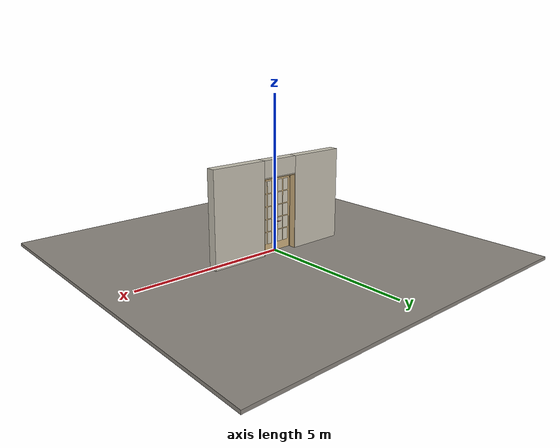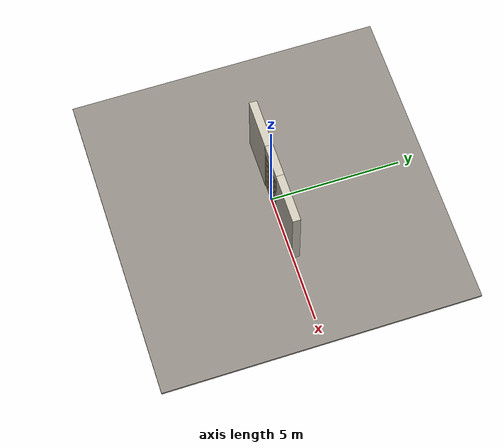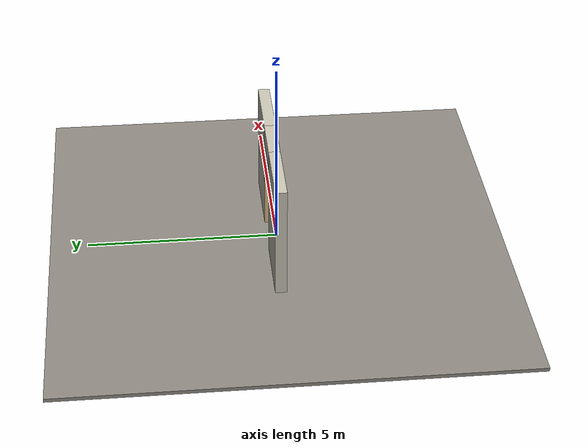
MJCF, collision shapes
<?xml version="1.0" ?>
<mujoco model="db0944_swing_double_simple">
  <compiler angle="radian" meshdir="../../hardware" texturedir="../../textures" autolimits="true" inertiafromgeom="false"/>
  <option timestep="0.002" integrator="implicitfast" cone="elliptic" impratio="10" noslip_iterations="3">
    <flag multiccd="enable"/>
  </option>
  <size memory="16M"/>
  <default>
    <geom condim="4" solref="0.005 1" solimp="0.95 0.99 0.001"/>
    <joint solreflimit="0.005 1" solimplimit="0.95 0.99 0.001"/>
    <tendon solreflimit="0.005 1"/>
    <equality solref="0.002 1"/>
  </default>
  <visual>
    <headlight ambient="0.4 0.4 0.4" diffuse="0.7 0.7 0.7" specular="0.2 0.2 0.2"/>
    <quality shadowsize="4096"/>
    <map znear="0.01" zfar="60"/>
  </visual>
  <asset>
    <mesh name="hinge_2af0f4d6ca" file="hinge_2af0f4d6ca.obj"/>
    <mesh name="hinge_jamb_c0c0a62ada" file="hinge_jamb_c0c0a62ada.obj"/>
    <mesh name="lever_f913fc5b7b" file="lever_f913fc5b7b.obj"/>
    <material name="mat_floor" rgba="0.55 0.53 0.5 1" specular="0.2" shininess="0.15" reflectance="0"/>
    <material name="mat_wall" rgba="0.78 0.76 0.7 1" specular="0.2" shininess="0.1" reflectance="0"/>
    <material name="mat_leaf_a" rgba="0.82 0.7 0.5 1" specular="0.2" shininess="0.45" reflectance="0"/>
    <material name="mat_glass" rgba="0.9 0.93 0.95 0.6" specular="0.2" shininess="0.5" reflectance="0.1"/>
    <material name="mat_hinge" rgba="0.65 0.66 0.68 1" specular="0.74" shininess="0.5" reflectance="0.36"/>
    <material name="mat_op_stainless" rgba="0.75 0.76 0.77 1" specular="0.8" shininess="0.65" reflectance="0.4"/>
    <material name="mat_trim" rgba="0.85 0.66 0.3 1" specular="0.8" shininess="0.75" reflectance="0.4"/>
    <material name="mat_bolt" rgba="0.85 0.66 0.3 1" specular="0.8" shininess="0.75" reflectance="0.4"/>
    <material name="mat_leaf_b" rgba="0.82 0.7 0.5 1" specular="0.2" shininess="0.45" reflectance="0"/>
    <material name="mat_frame" rgba="0.82 0.7 0.5 1" specular="0.2" shininess="0.45" reflectance="0"/>
    <material name="mat_astragal" rgba="0.8 0.81 0.83 1" specular="0.8" shininess="0.6" reflectance="0.4"/>
    <texture name="skybox" type="skybox" builtin="gradient" rgb1="0.6 0.7 0.85" rgb2="0.9 0.92 0.95" width="256" height="256"/>
  </asset>
  <worldbody>
    <light name="sun" pos="1.5 -2.5 4" dir="-0.3 0.5 -0.8" directional="true" diffuse="0.8 0.8 0.8" specular="0.3 0.3 0.3" castshadow="true"/>
    <light name="fill" pos="-1.5 2.5 3" dir="0.3 -0.5 -0.7" directional="true" diffuse="0.35 0.35 0.4" castshadow="false"/>
    <camera name="robot_view" pos="0 -2.814812 2.043887" xyaxes="1 0 0 0 0.26963 0.962964" fovy="52"/>
    <camera name="far_view" pos="0 3.030813 2.043887" xyaxes="-1 0 0 0 -0.26963 0.962964" fovy="52"/>
    <camera name="iso" pos="-2.221337 -2.347163 2.511538" xyaxes="0.741536 -0.670913 0 0.242917 0.268487 0.932151" fovy="46"/>
    <camera name="detail_handle" pos="0.0045 -0.877 1.245" xyaxes="0.97561 0.219512 0 -0.070934 0.315262 0.94635" fovy="38"/>
    <geom name="floor" type="box" size="6 6 0.05" pos="0 0 -0.05" material="mat_floor" group="0" contype="1" conaffinity="1" friction="0.8 0.005 0.0001" density="2400"/>
    <geom name="wall_left" type="box" size="0.93325 0.15 1.5255" pos="-1.56675 0.108 1.5255" material="mat_wall" group="0" contype="1" conaffinity="1" friction="0.6 0.005 0.0001" density="800"/>
    <geom name="wall_right" type="box" size="0.93325 0.15 1.5255" pos="1.56675 0.108 1.5255" material="mat_wall" group="0" contype="1" conaffinity="1" friction="0.6 0.005 0.0001" density="800"/>
    <geom name="wall_header" type="box" size="0.6335 0.15 0.2755" pos="0 0.108 2.7755" material="mat_wall" group="0" contype="1" conaffinity="1" friction="0.6 0.005 0.0001" density="800"/>
    <geom name="hinge_0_jamb" type="mesh" mesh="hinge_jamb_c0c0a62ada" pos="-0.6115 -0.029 0.259" material="mat_hinge" group="1" contype="0" conaffinity="0" density="7850"/>
    <geom name="hinge_1_jamb" type="mesh" mesh="hinge_jamb_c0c0a62ada" pos="-0.6115 -0.029 0.928333" material="mat_hinge" group="1" contype="0" conaffinity="0" density="7850"/>
    <geom name="hinge_2_jamb" type="mesh" mesh="hinge_jamb_c0c0a62ada" pos="-0.6115 -0.029 1.597667" material="mat_hinge" group="1" contype="0" conaffinity="0" density="7850"/>
    <geom name="hinge_3_jamb" type="mesh" mesh="hinge_jamb_c0c0a62ada" pos="-0.6115 -0.029 2.267" material="mat_hinge" group="1" contype="0" conaffinity="0" density="7850"/>
    <geom name="hinge_0_jamb_2" type="mesh" mesh="hinge_jamb_c0c0a62ada" pos="0.6115 -0.029 0.259" quat="0 0 1 0" material="mat_hinge" group="1" contype="0" conaffinity="0" density="7850"/>
    <geom name="hinge_1_jamb_2" type="mesh" mesh="hinge_jamb_c0c0a62ada" pos="0.6115 -0.029 0.928333" quat="0 0 1 0" material="mat_hinge" group="1" contype="0" conaffinity="0" density="7850"/>
    <geom name="hinge_2_jamb_2" type="mesh" mesh="hinge_jamb_c0c0a62ada" pos="0.6115 -0.029 1.597667" quat="0 0 1 0" material="mat_hinge" group="1" contype="0" conaffinity="0" density="7850"/>
    <geom name="hinge_3_jamb_2" type="mesh" mesh="hinge_jamb_c0c0a62ada" pos="0.6115 -0.029 2.267" quat="0 0 1 0" material="mat_hinge" group="1" contype="0" conaffinity="0" density="7850"/>
    <geom name="jamb_l" type="box" size="0.0095 0.15 1.2255" pos="-0.624 0.108 1.2255" material="mat_frame" group="0" contype="1" conaffinity="1" friction="0.6 0.005 0.0001" density="300"/>
    <geom name="jamb_r" type="box" size="0.0095 0.15 1.2255" pos="0.624 0.108 1.2255" material="mat_frame" group="0" contype="1" conaffinity="1" friction="0.6 0.005 0.0001" density="300"/>
    <geom name="jamb_head" type="box" size="0.6335 0.15 0.0095" pos="0 0.108 2.4605" material="mat_frame" group="0" contype="1" conaffinity="1" friction="0.6 0.005 0.0001" density="300"/>
    <geom name="head_stud" type="box" size="0.6335 0.15 0.015" pos="0 0.108 2.485" material="mat_wall" group="0" contype="1" conaffinity="1" friction="0.6 0.005 0.0001" density="500"/>
    <geom name="stop_l" type="box" size="0.015 0.006 1.2255" pos="-0.5995 0.0285 1.2255" material="mat_frame" group="0" contype="1" conaffinity="1" friction="0.6 0.005 0.0001" density="300"/>
    <geom name="stop_r" type="box" size="0.015 0.006 1.2255" pos="0.5995 0.0285 1.2255" material="mat_frame" group="0" contype="1" conaffinity="1" friction="0.6 0.005 0.0001" density="300"/>
    <geom name="stop_head" type="box" size="0.6145 0.006 0.015" pos="0 0.0285 2.436" material="mat_frame" group="0" contype="1" conaffinity="1" friction="0.6 0.005 0.0001" density="300"/>
    <site name="approach_point" pos="0 -1.5 0" quat="1 0 0 0" size="0.05" rgba="0.2 0.9 0.2 0.5" group="4"/>
    <site name="goal_point" pos="0 1.5 0" quat="1 0 0 0" size="0.05" rgba="0.2 0.9 0.2 0.5" group="4"/>
    <site name="door_plane_center" pos="0 0 1.2255" quat="1 0 0 0" size="0.02" rgba="0.2 0.9 0.2 0.5" group="4"/>
    <site name="approach_point_2" pos="0 -1.5 0" quat="1 0 0 0" size="0.05" rgba="0.2 0.9 0.2 0.5" group="4"/>
    <site name="goal_point_2" pos="0 1.5 0" quat="1 0 0 0" size="0.05" rgba="0.2 0.9 0.2 0.5" group="4"/>
    <site name="door_plane_center_2" pos="0 0 1.2255" quat="1 0 0 0" size="0.02" rgba="0.2 0.9 0.2 0.5" group="4"/>
    <site name="approach_point_3" pos="0 -1.5 0" quat="1 0 0 0" size="0.05" rgba="0.2 0.9 0.2 0.5" group="4"/>
    <site name="goal_point_3" pos="0 1.5 0" quat="1 0 0 0" size="0.05" rgba="0.2 0.9 0.2 0.5" group="4"/>
    <site name="door_plane_center_3" pos="0 0 1.2255" quat="1 0 0 0" size="0.02" rgba="0.2 0.9 0.2 0.5" group="4"/>
    <body name="leaf_a" pos="-0.6145 0 0">
      <inertial pos="0.297037 -0.000711 1.226432" mass="25.270582" quat="0.502247 0.499184 0.500833 -0.497724" diaginertia="0.865402319 12.453406267 13.309745576"/>
      <joint name="leaf_a_hinge" type="hinge" axis="0 0 -1" pos="0.003 -0.029 0" limited="true" range="0 1.570796" solreflimit="0.02 1" damping="0.110964" frictionloss="0.892594" armature="0.02"/>
      <geom name="leaf_a_slab" type="box" size="0.305 0.022 1.219" pos="0.308 0 1.228" material="mat_leaf_a" group="0" contype="1" conaffinity="1" friction="0.35 0.005 0.0001" density="1"/>
      <geom name="leaf_a_glass_0" type="box" size="0.1 0.0228 0.192792" pos="0.193 0 0.469972" material="mat_glass" group="1" contype="0" conaffinity="0" density="1"/>
      <geom name="leaf_a_glass_1" type="box" size="0.1 0.0228 0.192792" pos="0.423 0 0.469972" material="mat_glass" group="1" contype="0" conaffinity="0" density="1"/>
      <geom name="leaf_a_glass_2" type="box" size="0.1 0.0228 0.192792" pos="0.193 0 0.885556" material="mat_glass" group="1" contype="0" conaffinity="0" density="1"/>
      <geom name="leaf_a_glass_3" type="box" size="0.1 0.0228 0.192792" pos="0.423 0 0.885556" material="mat_glass" group="1" contype="0" conaffinity="0" density="1"/>
      <geom name="leaf_a_glass_4" type="box" size="0.1 0.0228 0.192792" pos="0.193 0 1.30114" material="mat_glass" group="1" contype="0" conaffinity="0" density="1"/>
      <geom name="leaf_a_glass_5" type="box" size="0.1 0.0228 0.192792" pos="0.423 0 1.30114" material="mat_glass" group="1" contype="0" conaffinity="0" density="1"/>
      <geom name="leaf_a_glass_6" type="box" size="0.1 0.0228 0.192792" pos="0.193 0 1.716724" material="mat_glass" group="1" contype="0" conaffinity="0" density="1"/>
      <geom name="leaf_a_glass_7" type="box" size="0.1 0.0228 0.192792" pos="0.423 0 1.716724" material="mat_glass" group="1" contype="0" conaffinity="0" density="1"/>
      <geom name="leaf_a_glass_8" type="box" size="0.1 0.0228 0.192792" pos="0.193 0 2.132308" material="mat_glass" group="1" contype="0" conaffinity="0" density="1"/>
      <geom name="leaf_a_glass_9" type="box" size="0.1 0.0228 0.192792" pos="0.423 0 2.132308" material="mat_glass" group="1" contype="0" conaffinity="0" density="1"/>
      <geom name="hinge_0" type="mesh" mesh="hinge_2af0f4d6ca" pos="0.003 -0.029 0.259" material="mat_hinge" group="1" contype="0" conaffinity="0" density="7850"/>
      <geom name="hinge_1" type="mesh" mesh="hinge_2af0f4d6ca" pos="0.003 -0.029 0.928333" material="mat_hinge" group="1" contype="0" conaffinity="0" density="7850"/>
      <geom name="hinge_2" type="mesh" mesh="hinge_2af0f4d6ca" pos="0.003 -0.029 1.597667" material="mat_hinge" group="1" contype="0" conaffinity="0" density="7850"/>
      <geom name="hinge_3" type="mesh" mesh="hinge_2af0f4d6ca" pos="0.003 -0.029 2.267" material="mat_hinge" group="1" contype="0" conaffinity="0" density="7850"/>
      <geom name="leaf_a_handle_escutcheon_n" type="box" size="0.02 0.0015 0.11" pos="0.543 -0.0235 0.965" material="mat_op_stainless" group="1" contype="0" conaffinity="0" density="3000"/>
      <geom name="leaf_a_handle_escutcheon_p" type="box" size="0.02 0.0015 0.11" pos="0.543 0.0235 0.965" material="mat_op_stainless" group="1" contype="0" conaffinity="0" density="3000"/>
      <geom name="leaf_a_latch_bolt_faceplate" type="box" size="0.0006 0.01235 0.0267" pos="0.6124 0 0.965" material="mat_bolt" group="1" contype="0" conaffinity="0" density="8500"/>
      <site name="leaf_a_edge_mid" pos="0.613 0 1.219" quat="1 0 0 0" size="0.02" rgba="0.2 0.9 0.2 0.5" group="4"/>
      <body name="leaf_a_handle" pos="0.543 0 0.965">
        <inertial pos="-0.0423 0 0" mass="0.712286" quat="0.707107 0 0 -0.707107" diaginertia="0.001444644 0.003449344 0.004855619"/>
        <joint name="leaf_a_handle_hinge" type="hinge" axis="0 -1 0" limited="true" range="0 0.65" damping="0.225568" frictionloss="0.051863" stiffness="1" springref="-0.503022" armature="0.01"/>
        <geom name="leaf_a_handle_lever_n" type="mesh" mesh="lever_f913fc5b7b" pos="0 -0.022 0" quat="0.707107 0.707107 0 0" material="mat_op_stainless" group="1" contype="0" conaffinity="0" density="3000"/>
        <geom name="leaf_a_handle_lever_col_n" type="capsule" size="0.0095 0.0555" pos="-0.065 -0.077 0" quat="0.707107 0 -0.707107 0" material="mat_op_stainless" group="3" contype="1" conaffinity="1" rgba="0.8 0.3 0.3 0.25" friction="0.7 0.01 0.0001" density="3000"/>
        <geom name="leaf_a_handle_hub_col_n" type="cylinder" size="0.012 0.022" pos="0 -0.052 0" quat="0.707107 -0.707107 0 0" material="mat_op_stainless" group="3" contype="1" conaffinity="1" rgba="0.8 0.3 0.3 0.25" friction="0.6 0.005 0.0001" density="3000"/>
        <geom name="leaf_a_handle_lever_p" type="mesh" mesh="lever_f913fc5b7b" pos="0 0.022 0" quat="-0.707107 0.707107 0 0" material="mat_op_stainless" group="1" contype="0" conaffinity="0" density="3000"/>
        <geom name="leaf_a_handle_lever_col_p" type="capsule" size="0.0095 0.0555" pos="-0.065 0.077 0" quat="0.707107 0 -0.707107 0" material="mat_op_stainless" group="3" contype="1" conaffinity="1" rgba="0.8 0.3 0.3 0.25" friction="0.7 0.01 0.0001" density="3000"/>
        <geom name="leaf_a_handle_hub_col_p" type="cylinder" size="0.012 0.022" pos="0 0.052 0" quat="0.707107 -0.707107 0 0" material="mat_op_stainless" group="3" contype="1" conaffinity="1" rgba="0.8 0.3 0.3 0.25" friction="0.6 0.005 0.0001" density="3000"/>
        <site name="leaf_a_handle_grip_n" pos="-0.104 -0.077 0" quat="1 0 0 0" size="0.012" rgba="0.2 0.9 0.2 0.5" group="4"/>
        <site name="leaf_a_handle_grip_p" pos="-0.104 0.077 0" quat="1 0 0 0" size="0.012" rgba="0.2 0.9 0.2 0.5" group="4"/>
      </body>
      <body name="leaf_a_latch_bolt" pos="0.613 0 0.965">
        <inertial pos="-0.00865 0 0" mass="0.041419" quat="0.92388 -0.382683 0 0" diaginertia="0.000000798 0.000005598 0.000005598"/>
        <joint name="leaf_a_latch_bolt_slide" type="slide" axis="-1 0 0" limited="true" range="0 0.0127" damping="2" frictionloss="0.3" stiffness="300" springref="-0.008333" armature="0.1"/>
        <geom name="leaf_a_latch_bolt_capsule" type="capsule" size="0.00635 0.015" pos="-0.00865 0 0" quat="0.707107 0 0.707107 0" material="mat_bolt" group="0" contype="1" conaffinity="1" friction="0.2 0.005 0.0001" density="8500"/>
      </body>
    </body>
    <body name="leaf_b" pos="0.6145 0 0">
      <inertial pos="-0.349081 0.006596 1.227221" mass="24.334003" quat="0.512567 0.488263 -0.511496 0.487079" diaginertia="1.062600312 12.017074814 13.069552117"/>
      <joint name="leaf_b_hinge" type="hinge" axis="0 0 1" pos="-0.003 -0.029 0" limited="true" range="0 0.001" solreflimit="0.02 1" damping="0.110964" frictionloss="0.892594" armature="0.02"/>
      <geom name="leaf_b_edge_965_wall_n" type="box" size="0.03 0.007075 0.0167" pos="-0.583 0.014925 0.965" material="mat_leaf_b" group="0" contype="1" conaffinity="1" friction="0.6 0.005 0.0001" density="1"/>
      <geom name="leaf_b_edge_965_wall_p" type="box" size="0.03 0.008 0.0167" pos="-0.583 -0.01585 0.965" material="mat_leaf_b" group="0" contype="1" conaffinity="1" friction="0.6 0.005 0.0001" density="1"/>
      <geom name="leaf_b_edge_965_ramp" type="box" size="0.03 0.01649 0.0167" pos="-0.578861 -0.026388 0.965" quat="0.977148 0 0 0.212558" material="mat_leaf_b" group="0" contype="1" conaffinity="1" friction="0.12 0.005 0.0001" density="1"/>
      <geom name="leaf_b_edge_965_back" type="box" size="0.02165 0.00785 0.0167" pos="-0.57465 0 0.965" material="mat_leaf_b" group="0" contype="1" conaffinity="1" friction="0.6 0.005 0.0001" density="1"/>
      <geom name="leaf_b_edge_seg_0" type="box" size="0.03 0.022 0.46965" pos="-0.583 0 0.47865" material="mat_leaf_b" group="0" contype="1" conaffinity="1" friction="0.6 0.005 0.0001" density="1"/>
      <geom name="leaf_b_edge_seg_1" type="box" size="0.03 0.022 0.73265" pos="-0.583 0 1.71435" material="mat_leaf_b" group="0" contype="1" conaffinity="1" friction="0.6 0.005 0.0001" density="1"/>
      <geom name="leaf_b_slab" type="box" size="0.275 0.022 1.219" pos="-0.278 0 1.228" material="mat_leaf_b" group="0" contype="1" conaffinity="1" friction="0.35 0.005 0.0001" density="1"/>
      <geom name="leaf_b_glass_0" type="box" size="0.085 0.0228 0.192792" pos="-0.178 0 0.469972" material="mat_glass" group="1" contype="0" conaffinity="0" density="1"/>
      <geom name="leaf_b_glass_1" type="box" size="0.085 0.0228 0.192792" pos="-0.378 0 0.469972" material="mat_glass" group="1" contype="0" conaffinity="0" density="1"/>
      <geom name="leaf_b_glass_2" type="box" size="0.085 0.0228 0.192792" pos="-0.178 0 0.885556" material="mat_glass" group="1" contype="0" conaffinity="0" density="1"/>
      <geom name="leaf_b_glass_3" type="box" size="0.085 0.0228 0.192792" pos="-0.378 0 0.885556" material="mat_glass" group="1" contype="0" conaffinity="0" density="1"/>
      <geom name="leaf_b_glass_4" type="box" size="0.085 0.0228 0.192792" pos="-0.178 0 1.30114" material="mat_glass" group="1" contype="0" conaffinity="0" density="1"/>
      <geom name="leaf_b_glass_5" type="box" size="0.085 0.0228 0.192792" pos="-0.378 0 1.30114" material="mat_glass" group="1" contype="0" conaffinity="0" density="1"/>
      <geom name="leaf_b_glass_6" type="box" size="0.085 0.0228 0.192792" pos="-0.178 0 1.716724" material="mat_glass" group="1" contype="0" conaffinity="0" density="1"/>
      <geom name="leaf_b_glass_7" type="box" size="0.085 0.0228 0.192792" pos="-0.378 0 1.716724" material="mat_glass" group="1" contype="0" conaffinity="0" density="1"/>
      <geom name="leaf_b_glass_8" type="box" size="0.085 0.0228 0.192792" pos="-0.178 0 2.132308" material="mat_glass" group="1" contype="0" conaffinity="0" density="1"/>
      <geom name="leaf_b_glass_9" type="box" size="0.085 0.0228 0.192792" pos="-0.378 0 2.132308" material="mat_glass" group="1" contype="0" conaffinity="0" density="1"/>
      <geom name="hinge_0_2" type="mesh" mesh="hinge_2af0f4d6ca" pos="-0.003 -0.029 0.259" quat="0 0 1 0" material="mat_hinge" group="1" contype="0" conaffinity="0" density="7850"/>
      <geom name="hinge_1_2" type="mesh" mesh="hinge_2af0f4d6ca" pos="-0.003 -0.029 0.928333" quat="0 0 1 0" material="mat_hinge" group="1" contype="0" conaffinity="0" density="7850"/>
      <geom name="hinge_2_2" type="mesh" mesh="hinge_2af0f4d6ca" pos="-0.003 -0.029 1.597667" quat="0 0 1 0" material="mat_hinge" group="1" contype="0" conaffinity="0" density="7850"/>
      <geom name="hinge_3_2" type="mesh" mesh="hinge_2af0f4d6ca" pos="-0.003 -0.029 2.267" quat="0 0 1 0" material="mat_hinge" group="1" contype="0" conaffinity="0" density="7850"/>
      <geom name="astragal" type="box" size="0.02 0.008 1.199" pos="-0.617 0.03 1.219" material="mat_astragal" group="0" contype="1" conaffinity="1" friction="0.6 0.005 0.0001" density="2700"/>
      <site name="leaf_b_edge_mid" pos="-0.613 0 1.219" quat="1 0 0 0" size="0.02" rgba="0.2 0.9 0.2 0.5" group="4"/>
    </body>
  </worldbody>
  <tendon>
    <fixed name="leaf_a_latch_bolt_coupling" limited="true" range="0 10">
      <joint joint="leaf_a_latch_bolt_slide" coef="1"/>
      <joint joint="leaf_a_handle_hinge" coef="-0.02082"/>
    </fixed>
  </tendon>
  <sensor>
    <jointpos name="leaf_a_hinge_pos" joint="leaf_a_hinge"/>
    <jointvel name="leaf_a_hinge_vel" joint="leaf_a_hinge"/>
    <jointpos name="leaf_a_handle_hinge_pos" joint="leaf_a_handle_hinge"/>
    <jointvel name="leaf_a_handle_hinge_vel" joint="leaf_a_handle_hinge"/>
    <jointpos name="leaf_a_latch_bolt_slide_pos" joint="leaf_a_latch_bolt_slide"/>
    <jointvel name="leaf_a_latch_bolt_slide_vel" joint="leaf_a_latch_bolt_slide"/>
    <jointpos name="leaf_b_hinge_pos" joint="leaf_b_hinge"/>
    <jointvel name="leaf_b_hinge_vel" joint="leaf_b_hinge"/>
  </sensor>
</mujoco>
